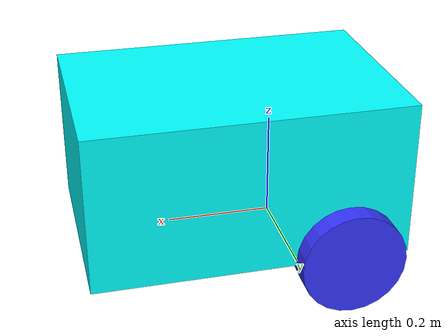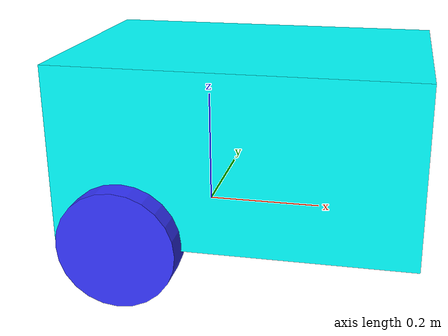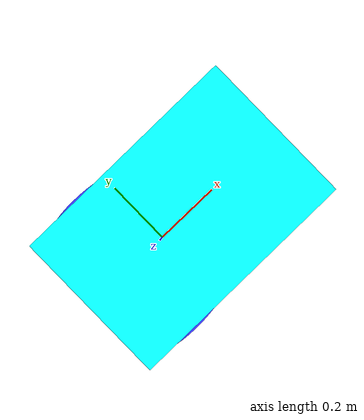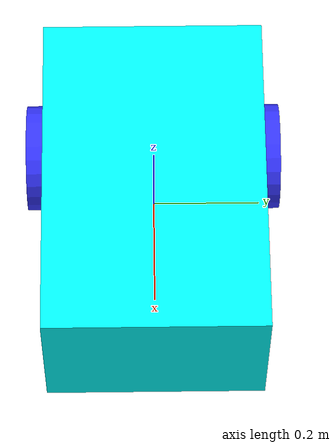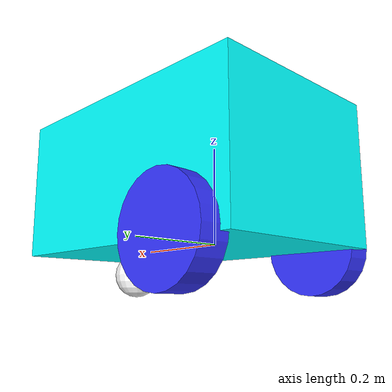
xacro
<?xml version="1.0"?>
<robot xmlns:xacro="http://www.ros.org/wiki/xacro" >

    <xacro:include filename="inertial2_macros.xacro"/>

      <!-- Define robot constants -->
  <xacro:property name="base_width" value="0.4"/>
  <xacro:property name="base_length" value="0.6"/>
  <xacro:property name="base_height" value="0.3"/>

  <!-- Wheel -->
  <xacro:property name="wheel_radius" value="0.1"/>
  <xacro:property name="wheel_width" value="0.06"/>
  <xacro:property name="wheel_ygap" value="0.21"/>
  <xacro:property name="wheel_zoff" value="0.4"/>
  <xacro:property name="wheel_xoff" value="0.22"/>
  <xacro:property name="wheel_offset_y" value="0.21"/>

  <xacro:property name="wheel_mass" value="0.05"/>
  <!-- caster -->
  <xacro:property name="caster_xoff" value="0.27"/>
  <xacro:property name="caster_raduis_yaw" value="0.1"/>
  <xacro:property name="caster_width_yaw" value="0.014"/>
  <xacro:property name="caster_raduis_pitch" value="0.1"/>

   <xacro:property name="caster_wheel_radius" value="0.05"/>
   <xacro:property name="caster_wheel_mass" value="0.5"/>

  <!-- cylinder -->
  <xacro:property name="cylinder_height" value="0.6"/>
  <xacro:property name="cylinder_raduis" value="0.1"/>
  <xacro:property name="cylinder_xoff" value="0.4"/>
  <xacro:property name="cylinder_zoff" value="0.3"/>

  <!-- laserScan -->
  <xacro:property name="laser_height" value="0.02"/>
  <xacro:property name="laser_length" value="0.02"/>
  <xacro:property name="laser_width" value="0.02"/>
  <xacro:property name="laser_xoff" value="0.4"/>
  <xacro:property name="laser_zoff" value="0.01"/>

<xacro:property name="effort" value="300"/>
<xacro:property name="velocity" value="0.5"/>
<xacro:property name="lower" value="-3.14"/>
<xacro:property name="upper" value="3.14"/>

    <material name="white">
        <color rgba="1 1 1 1" />
    </material>

    <material name="orange">
        <color rgba="1 0.3 0.1 1"/>
    </material>

    <material name="blue">
        <color rgba="0.2 0.2 1 1"/>
    </material>

    <material name="black">
        <color rgba="0 0 0 1"/>
    </material>

    <material name="red">
        <color rgba="1 0 0 1"/>
    </material>

    <!-- BASE LINK -->

    <link name="base_link">

    </link>

    <!-- BASE_FOOTPRINT LINK -->

    <joint name="base_footprint_joint" type="fixed">
        <parent link="base_link"/>
        <child link="base_footprint"/>
        <origin xyz="0 0 0" rpy="0 0 0"/>
    </joint>

    <link name="base_footprint">
    </link>

     <!-- CHASSIS LINK -->

    <joint name="chassis_joint" type="fixed">
        <parent link="base_link"/>
        <child link="chassis"/>
        <origin xyz="${-1*wheel_xoff} 0 -0.01"/>
    </joint>

    <link name="chassis">
    <visual>
     <origin xyz="${base_length/2} 0 ${base_height/2}"/>
      <geometry>
        <box size="${base_length} ${base_width} ${base_height}"/>
      </geometry>
      <material name="Cyan">
        <color rgba="0 1.0 1.0 1.0"/>
      </material>
    </visual>
    <collision>
    <origin xyz="${base_length/2} 0 ${base_height/2}"/>
      <geometry>
        <box size="${base_length} ${base_width} ${base_height}"/>
      </geometry>
    </collision>

    <xacro:base_inertia m="1" d="${base_length}" w="${base_width}" h="${base_height}"/>
  </link>

    <gazebo reference="chassis">
        <material>Gazebo/Orange</material>
    </gazebo>

    <joint name="left_wheel_joint" type="continuous">
        <parent link="base_link"/>
        <child link="left_wheel"/>
        <origin xyz="-0.1 ${wheel_offset_y} 0" rpy="-${pi/2} 0 0" />
        <axis xyz="0 0 1"/>
    </joint>

    <link name="left_wheel">
        <visual>
            <geometry>
                <cylinder radius="${wheel_radius}" length="${wheel_width}"/>
            </geometry>
            <material name="blue"/>
        </visual>
        <collision>
            <geometry>
                <sphere radius="${wheel_radius}"/>
            </geometry>
        </collision>
        <xacro:inertial_cylinder mass="${wheel_mass}" length="${wheel_width}" radius="${wheel_radius}">
            <origin xyz="0 0 0" rpy="0 0 0"/>
        </xacro:inertial_cylinder>
    </link>

    <gazebo reference="left_wheel">
        <material>Gazebo/Blue</material>
    </gazebo>

    <joint name="right_wheel_joint" type="continuous">
        <parent link="base_link"/>
        <child link="right_wheel"/>
        <origin xyz="-0.1 ${-wheel_offset_y} 0" rpy="${pi/2} 0 0" />
        <axis xyz="0 0 -1"/>
    </joint>

    <link name="right_wheel">
        <visual>
            <geometry>
                <cylinder radius="${wheel_radius}" length="${wheel_width}"/>
            </geometry>
            <material name="blue"/>
        </visual>
        <collision>
            <geometry>
                <sphere radius="${wheel_radius}"/>
            </geometry>
        </collision>
        <xacro:inertial_cylinder mass="${wheel_mass}" length="${wheel_width}" radius="${wheel_radius}">
            <origin xyz="0 0 0" rpy="0 0 0"/>
        </xacro:inertial_cylinder>
    </link>

    <gazebo reference="right_wheel">
        <material>Gazebo/Blue</material>
    </gazebo>

<joint name="caster_wheel_joint" type="fixed">
        <parent link="chassis"/>
        <child link="caster_wheel"/>
        <origin xyz="${caster_xoff+0.2} 0.0 -0.04"/>
    </joint>

    <link name="caster_wheel">
        <visual>
            <geometry>
                <sphere radius="${caster_wheel_radius}"/>
            </geometry>
            <material name="white"/>
        </visual>
        <collision>
            <geometry>
                <sphere radius="${caster_wheel_radius}"/>
            </geometry>
        </collision>
        <xacro:inertial_sphere mass="${caster_wheel_mass}" radius="${caster_wheel_radius}">
            <origin xyz="0 0 0" rpy="0 0 0"/>
        </xacro:inertial_sphere>
    </link>

    <gazebo reference="caster_wheel">
        <material>Gazebo/White</material>
        <mu1 value="0.001"/>
        <mu2 value="0.001"/>
    </gazebo>

    <!-- cylinder on robot  -->

</robot>

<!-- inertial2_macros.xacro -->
<robot xmlns:xacro="http://www.ros.org/wiki/xacro" >

  <!-- function base_inertia -->
  <xacro:macro name="base_inertia" params="m d w h">
    <inertial>
      <origin xyz="0.5 0 0.4"/>
      <mass value="${m}"/>
      <inertia ixx="${(m/12) * (h*h + d*d)}" ixy="0.0" ixz="0.0" iyy="${(m/12) * (w*w + d*d)}" iyz="0.0" izz="${(m/12) * (w*w + h*h)}"/>
    </inertial>
  </xacro:macro>
  <!-- function wheel_inertia -->
  <xacro:macro name="cylinder_inertia" params="m r h">
    <inertial>
      <origin xyz="0 0 0" rpy="${pi/2} 0 0"/>
      <mass value="${m}"/>
      <inertia ixx="${(m/12) * (3*r*r + h*h)}" ixy = "0" ixz = "0" iyy="${(m/12) * (3*r*r + h*h)}" iyz = "0" izz="${(m/2) * (r*r)}"/>
    </inertial>
  </xacro:macro>
  <!-- function caster_inertia -->
  <xacro:macro name="caster_inertia" params="m r">
      <mass value="${m}"/>
      <inertia ixx="${(2/5) * m * (r*r)}" ixy="0.0" ixz="0.0" iyy="${(2/5) * m * (r*r)}" iyz="0.0" izz="${(2/5) * m * (r*r)}"/>
  </xacro:macro>

  <xacro:macro name="caster_front" params="m r h" >
    <mass value="${m}"/>
    <inertia ixx="${(m/12) * (3*r*r + h*h)}" ixy = "0" ixz = "0" iyy="${(m/12) * (3*r*r + h*h)}" iyz = "0" izz="${(m/2) * (r*r)}"/>
  </xacro:macro>

  <!-- function cylinder_inertia -->
  <xacro:macro name="cylinder_a" params="m r h">
    <inertial>
      <origin xyz="0 0 0" rpy="${pi/2} 0 0"/>
      <mass value="${m}"/>
      <inertia ixx="${(m/12) * (3*r*r + h*h)}" ixy = "0" ixz = "0" iyy="${(m/12) * (3*r*r + h*h)}" iyz = "0" izz="${(m/2) * (r*r)}"/>
    </inertial>
  </xacro:macro>

  <xacro:macro name="inertial_cylinder" params="mass length radius *origin">
        <inertial>
            <xacro:insert_block name="origin"/>
            <mass value="${mass}" />
            <inertia ixx="${(1/12) * mass * (3*radius*radius + length*length)}" ixy="0.0" ixz="0.0"
                    iyy="${(1/12) * mass * (3*radius*radius + length*length)}" iyz="0.0"
                    izz="${(1/2) * mass * (radius*radius)}" />
        </inertial>
    </xacro:macro>

        <xacro:macro name="inertial_sphere" params="mass radius *origin">
        <inertial>
            <xacro:insert_block name="origin"/>
            <mass value="${mass}" />
            <inertia ixx="${(2/5) * mass * (radius*radius)}" ixy="0.0" ixz="0.0"
                    iyy="${(2/5) * mass * (radius*radius)}" iyz="0.0"
                    izz="${(2/5) * mass * (radius*radius)}" />
        </inertial>
    </xacro:macro>

</robot>
